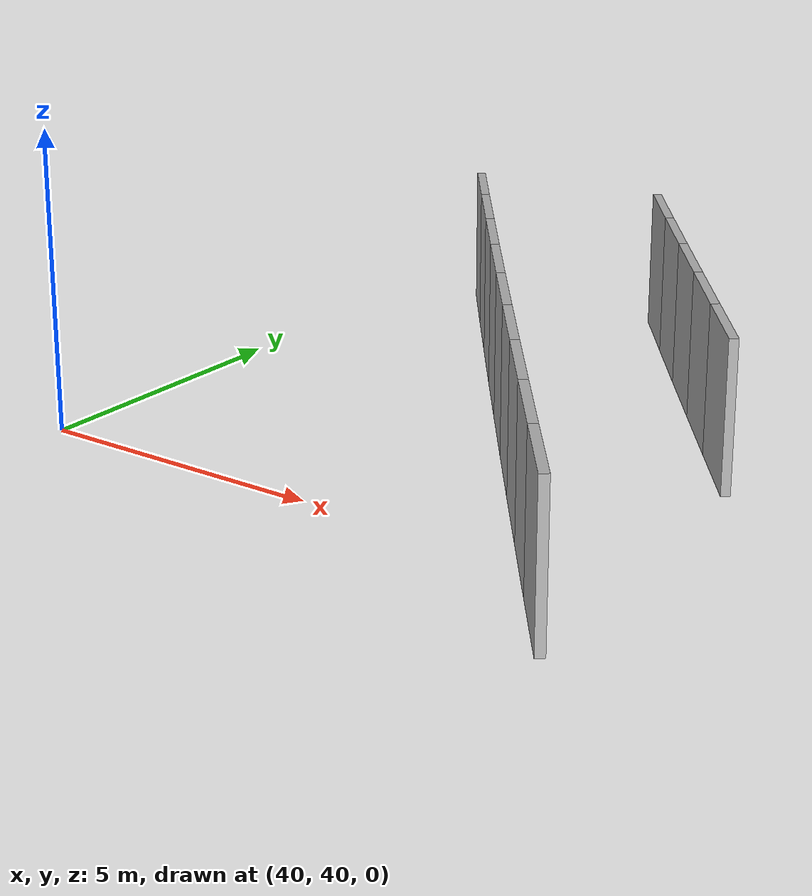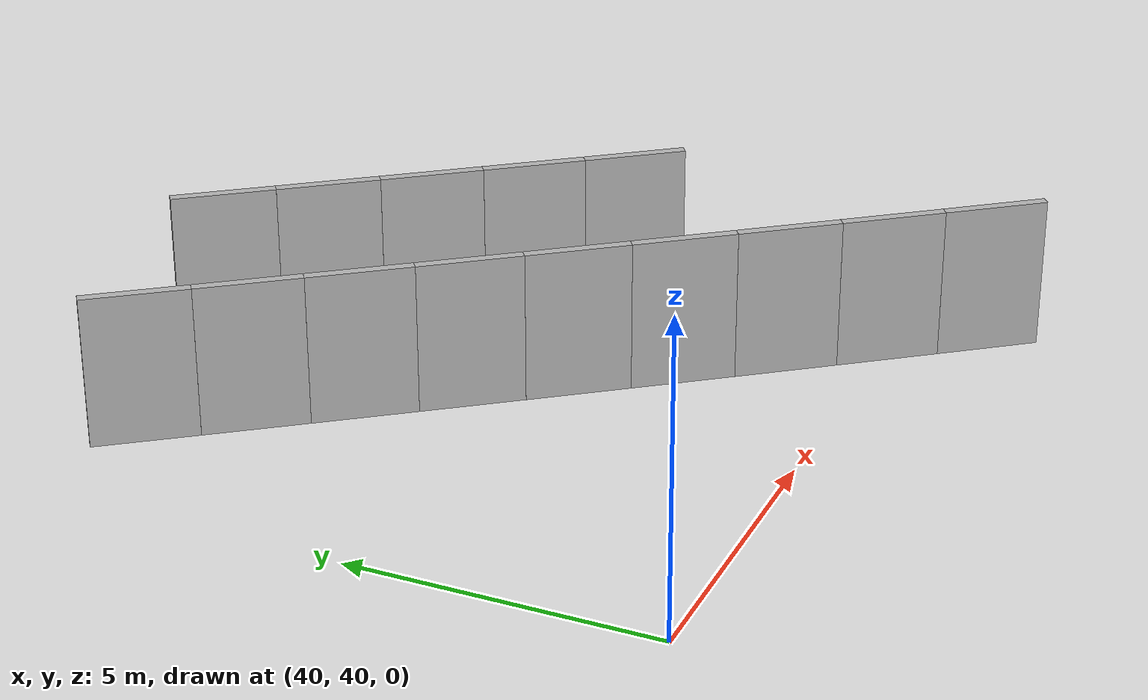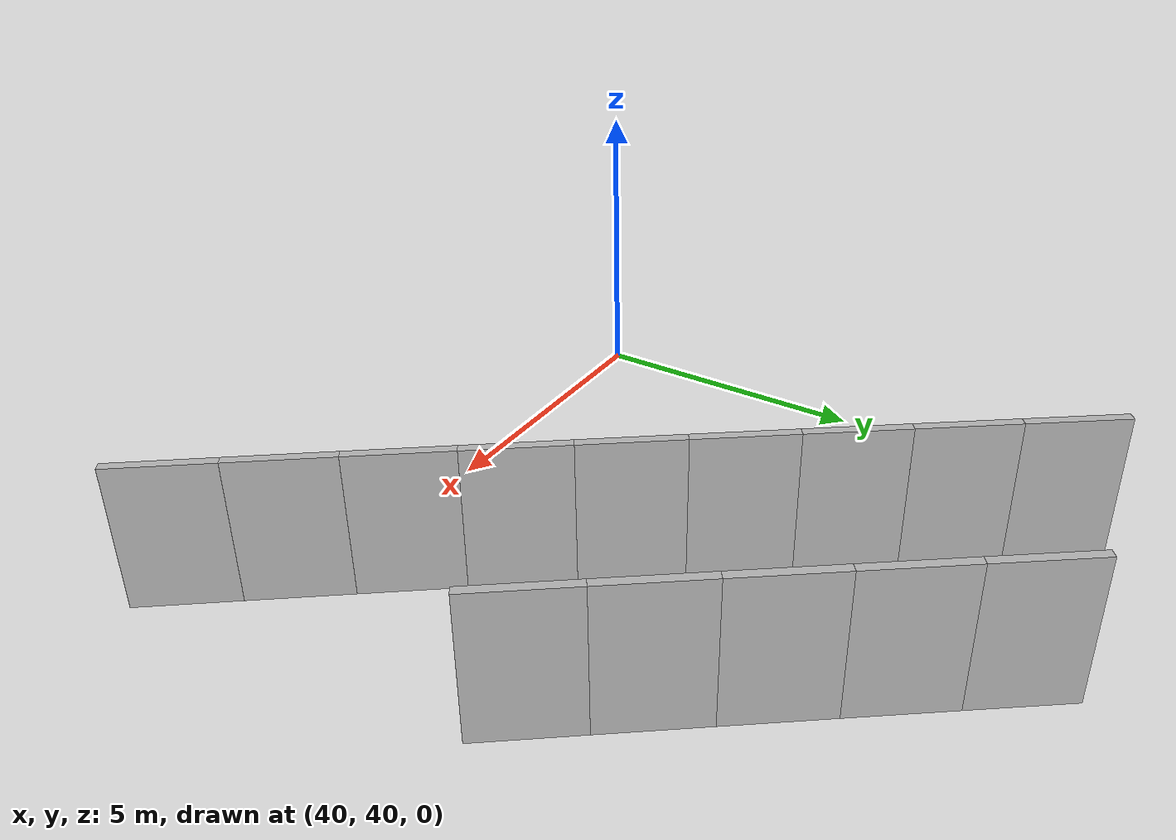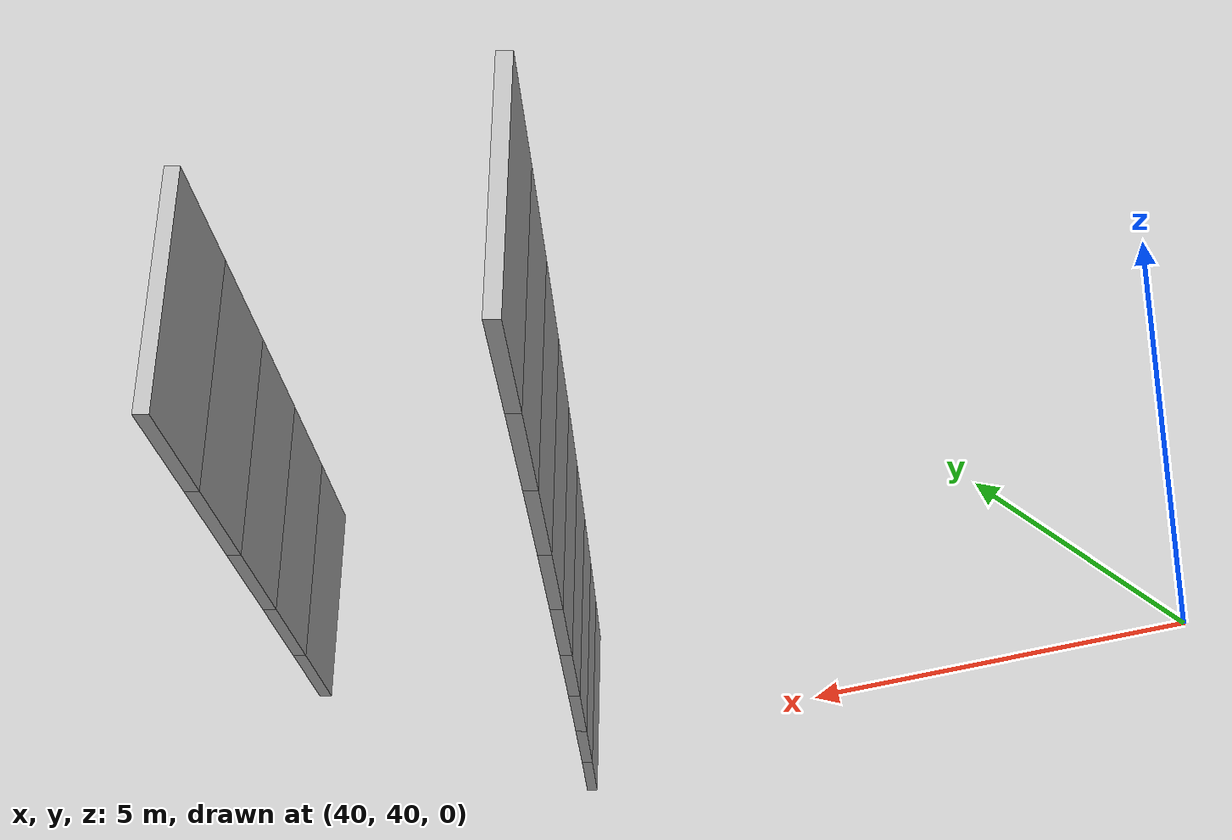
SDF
<?xml version="1.0" ?>
<sdf version="1.6">
  <model name="sps_4824">
    <pose frame="">0 0 0 0 -0 0</pose>
    <static>1</static>
    <self_collide>0</self_collide>
    <allow_auto_disable>0</allow_auto_disable>
    <link name="Wall6534">
      <kinematic>0</kinematic>
      <gravity>1</gravity>
      <self_collide>0</self_collide>
      <collision name="collision">
        <geometry>
          <box>
            <size>1.6862 0.15 2.5</size>
          </box>
        </geometry>
        <pose frame="">0 0 0 0 -0 0</pose>
      </collision>
      <visual name="visual">
        <geometry>
          <box>
            <size>1.6862 0.15 2.5</size>
          </box>
        </geometry>
        <pose frame="">0 0 0 0 -0 0</pose>
        <cast_shadows>1</cast_shadows>
        <transparency>0.0</transparency>
      </visual>
      <pose frame="">41.9685 49.3856 1.25 0 0 -0.942144</pose>
    </link>
    <link name="Wall6535">
      <kinematic>0</kinematic>
      <gravity>1</gravity>
      <self_collide>0</self_collide>
      <collision name="collision">
        <geometry>
          <box>
            <size>1.68611 0.15 2.5</size>
          </box>
        </geometry>
        <pose frame="">0 0 0 0 -0 0</pose>
      </collision>
      <visual name="visual">
        <geometry>
          <box>
            <size>1.68611 0.15 2.5</size>
          </box>
        </geometry>
        <pose frame="">0 0 0 0 -0 0</pose>
        <cast_shadows>1</cast_shadows>
        <transparency>0.0</transparency>
      </visual>
      <pose frame="">42.9614 48.0228 1.25 0 0 -0.940182</pose>
    </link>
    <link name="Wall6536">
      <kinematic>0</kinematic>
      <gravity>1</gravity>
      <self_collide>0</self_collide>
      <collision name="collision">
        <geometry>
          <box>
            <size>1.68617 0.15 2.5</size>
          </box>
        </geometry>
        <pose frame="">0 0 0 0 -0 0</pose>
      </collision>
      <visual name="visual">
        <geometry>
          <box>
            <size>1.68617 0.15 2.5</size>
          </box>
        </geometry>
        <pose frame="">0 0 0 0 -0 0</pose>
        <cast_shadows>1</cast_shadows>
        <transparency>0.0</transparency>
      </visual>
      <pose frame="">43.9564 46.6616 1.25 0 0 -0.938908</pose>
    </link>
    <link name="Wall6537">
      <kinematic>0</kinematic>
      <gravity>1</gravity>
      <self_collide>0</self_collide>
      <collision name="collision">
        <geometry>
          <box>
            <size>1.68614 0.15 2.5</size>
          </box>
        </geometry>
        <pose frame="">0 0 0 0 -0 0</pose>
      </collision>
      <visual name="visual">
        <geometry>
          <box>
            <size>1.68614 0.15 2.5</size>
          </box>
        </geometry>
        <pose frame="">0 0 0 0 -0 0</pose>
        <cast_shadows>1</cast_shadows>
        <transparency>0.0</transparency>
      </visual>
      <pose frame="">44.9536 45.3019 1.25 0 0 -0.937098</pose>
    </link>
    <link name="Wall6538">
      <kinematic>0</kinematic>
      <gravity>1</gravity>
      <self_collide>0</self_collide>
      <collision name="collision">
        <geometry>
          <box>
            <size>1.68632 0.15 2.5</size>
          </box>
        </geometry>
        <pose frame="">0 0 0 0 -0 0</pose>
      </collision>
      <visual name="visual">
        <geometry>
          <box>
            <size>1.68632 0.15 2.5</size>
          </box>
        </geometry>
        <pose frame="">0 0 0 0 -0 0</pose>
        <cast_shadows>1</cast_shadows>
        <transparency>0.0</transparency>
      </visual>
      <pose frame="">45.9532 43.9439 1.25 0 0 -0.935425</pose>
    </link>
    <link name="Wall6539">
      <kinematic>0</kinematic>
      <gravity>1</gravity>
      <self_collide>0</self_collide>
      <collision name="collision">
        <geometry>
          <box>
            <size>1.68616 0.15 2.5</size>
          </box>
        </geometry>
        <pose frame="">0 0 0 0 -0 0</pose>
      </collision>
      <visual name="visual">
        <geometry>
          <box>
            <size>1.68616 0.15 2.5</size>
          </box>
        </geometry>
        <pose frame="">0 0 0 0 -0 0</pose>
        <cast_shadows>1</cast_shadows>
        <transparency>0.0</transparency>
      </visual>
      <pose frame="">46.9551 42.5876 1.25 0 0 -0.933731</pose>
    </link>
    <link name="Wall6540">
      <kinematic>0</kinematic>
      <gravity>1</gravity>
      <self_collide>0</self_collide>
      <collision name="collision">
        <geometry>
          <box>
            <size>1.68618 0.15 2.5</size>
          </box>
        </geometry>
        <pose frame="">0 0 0 0 -0 0</pose>
      </collision>
      <visual name="visual">
        <geometry>
          <box>
            <size>1.68618 0.15 2.5</size>
          </box>
        </geometry>
        <pose frame="">0 0 0 0 -0 0</pose>
        <cast_shadows>1</cast_shadows>
        <transparency>0.0</transparency>
      </visual>
      <pose frame="">47.9593 41.233 1.25 0 0 -0.932073</pose>
    </link>
    <link name="Wall6541">
      <kinematic>0</kinematic>
      <gravity>1</gravity>
      <self_collide>0</self_collide>
      <collision name="collision">
        <geometry>
          <box>
            <size>1.68634 0.15 2.5</size>
          </box>
        </geometry>
        <pose frame="">0 0 0 0 -0 0</pose>
      </collision>
      <visual name="visual">
        <geometry>
          <box>
            <size>1.68634 0.15 2.5</size>
          </box>
        </geometry>
        <pose frame="">0 0 0 0 -0 0</pose>
        <cast_shadows>1</cast_shadows>
        <transparency>0.0</transparency>
      </visual>
      <pose frame="">48.9657 39.88 1.25 0 0 -0.93043</pose>
    </link>
    <link name="Wall6542">
      <kinematic>0</kinematic>
      <gravity>1</gravity>
      <self_collide>0</self_collide>
      <collision name="collision">
        <geometry>
          <box>
            <size>1.68622 0.15 2.5</size>
          </box>
        </geometry>
        <pose frame="">0 0 0 0 -0 0</pose>
      </collision>
      <visual name="visual">
        <geometry>
          <box>
            <size>1.68622 0.15 2.5</size>
          </box>
        </geometry>
        <pose frame="">0 0 0 0 -0 0</pose>
        <cast_shadows>1</cast_shadows>
        <transparency>0.0</transparency>
      </visual>
      <pose frame="">49.9744 38.5287 1.25 0 0 -0.928707</pose>
    </link>
    <link name="Wall9202">
      <kinematic>0</kinematic>
      <gravity>1</gravity>
      <self_collide>0</self_collide>
      <collision name="collision">
        <geometry>
          <box>
            <size>1.68074 0.15 2.5</size>
          </box>
        </geometry>
        <pose frame="">0 0 0 0 -0 0</pose>
      </collision>
      <visual name="visual">
        <geometry>
          <box>
            <size>1.68074 0.15 2.5</size>
          </box>
        </geometry>
        <pose frame="">0 0 0 0 -0 0</pose>
        <cast_shadows>1</cast_shadows>
        <transparency>0.0</transparency>
      </visual>
      <pose frame="">49.5276 44.4909 1.25 0 -0 2.20772</pose>
    </link>
    <link name="Wall9203">
      <kinematic>0</kinematic>
      <gravity>1</gravity>
      <self_collide>0</self_collide>
      <collision name="collision">
        <geometry>
          <box>
            <size>1.681 0.15 2.5</size>
          </box>
        </geometry>
        <pose frame="">0 0 0 0 -0 0</pose>
      </collision>
      <visual name="visual">
        <geometry>
          <box>
            <size>1.681 0.15 2.5</size>
          </box>
        </geometry>
        <pose frame="">0 0 0 0 -0 0</pose>
        <cast_shadows>1</cast_shadows>
        <transparency>0.0</transparency>
      </visual>
      <pose frame="">48.529 45.843 1.25 0 -0 2.20616</pose>
    </link>
    <link name="Wall9204">
      <kinematic>0</kinematic>
      <gravity>1</gravity>
      <self_collide>0</self_collide>
      <collision name="collision">
        <geometry>
          <box>
            <size>1.68073 0.15 2.5</size>
          </box>
        </geometry>
        <pose frame="">0 0 0 0 -0 0</pose>
      </collision>
      <visual name="visual">
        <geometry>
          <box>
            <size>1.68073 0.15 2.5</size>
          </box>
        </geometry>
        <pose frame="">0 0 0 0 -0 0</pose>
        <cast_shadows>1</cast_shadows>
        <transparency>0.0</transparency>
      </visual>
      <pose frame="">47.5326 47.1967 1.25 0 -0 2.20447</pose>
    </link>
    <link name="Wall9205">
      <kinematic>0</kinematic>
      <gravity>1</gravity>
      <self_collide>0</self_collide>
      <collision name="collision">
        <geometry>
          <box>
            <size>1.68081 0.15 2.5</size>
          </box>
        </geometry>
        <pose frame="">0 0 0 0 -0 0</pose>
      </collision>
      <visual name="visual">
        <geometry>
          <box>
            <size>1.68081 0.15 2.5</size>
          </box>
        </geometry>
        <pose frame="">0 0 0 0 -0 0</pose>
        <cast_shadows>1</cast_shadows>
        <transparency>0.0</transparency>
      </visual>
      <pose frame="">46.5384 48.5519 1.25 0 -0 2.203</pose>
    </link>
    <link name="Wall9206">
      <kinematic>0</kinematic>
      <gravity>1</gravity>
      <self_collide>0</self_collide>
      <collision name="collision">
        <geometry>
          <box>
            <size>1.68079 0.15 2.5</size>
          </box>
        </geometry>
        <pose frame="">0 0 0 0 -0 0</pose>
      </collision>
      <visual name="visual">
        <geometry>
          <box>
            <size>1.68079 0.15 2.5</size>
          </box>
        </geometry>
        <pose frame="">0 0 0 0 -0 0</pose>
        <cast_shadows>1</cast_shadows>
        <transparency>0.0</transparency>
      </visual>
      <pose frame="">45.5465 49.9088 1.25 0 -0 2.20107</pose>
    </link>
  </model>
</sdf>
